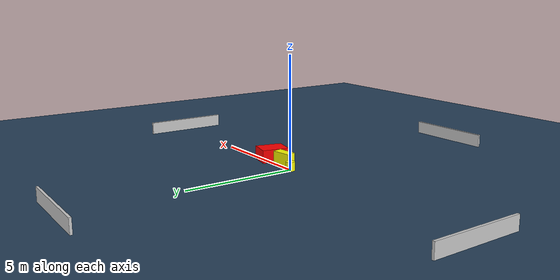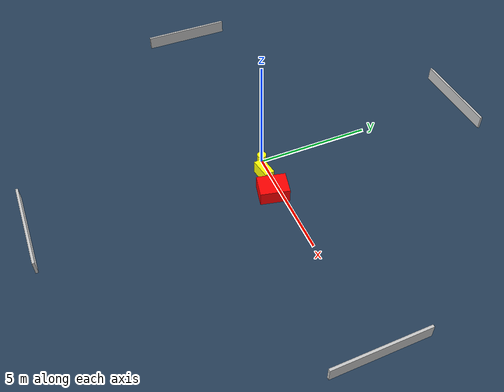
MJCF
<?xml version="1.0" ?>
<mujoco model="generated_environment">
  <option timestep="0.01" integrator="RK4" cone="elliptic"/>
  <default>
    <geom density="1"/>
  </default>
  <asset>
    <texture builtin="gradient" height="3072" name="skybox" rgb1="0.3 0.5 0.7" rgb2="0 0 0" type="skybox" width="512"/>
    <texture builtin="checker" height="300" name="groundplane" rgb1="0.2 0.3 0.4" rgb2="0.1 0.2 0.3" type="2d" width="300"/>
    <material name="groundplane" reflectance="0.2" texrepeat="5 5" texture="groundplane"/>
  </asset>
  <worldbody>
    <light dir="0 0 -1" directional="true" pos="0 0 1.5"/>
    <geom condim="3" friction="0.5 0.005 0.001" material="groundplane" name="floor" pos="0 0 0" size="0 0 0.05" type="plane"/>
    <body name="walls">
      <geom name="wall_1" condim="4" pos="-10.0 0.0 0.3" rgba="0.800000011920929 0.800000011920929 0.800000011920929 1.0" size="0.05 2.0 0.3" type="box"/>
      <geom name="wall_2" condim="4" pos="10.0 0.0 0.3" rgba="0.800000011920929 0.800000011920929 0.800000011920929 1.0" size="0.05 2.0 0.3" type="box"/>
      <geom name="wall_3" condim="4" pos="0.0 -10.0 0.3" rgba="0.800000011920929 0.800000011920929 0.800000011920929 1.0" size="2.0 0.05 0.3" type="box"/>
      <geom name="wall_4" condim="4" pos="0.0 10.0 0.3" rgba="0.800000011920929 0.800000011920929 0.800000011920929 1.0" size="2.0 0.05 0.3" type="box"/>
    </body>
    <body name="robot">
      <joint name="joint_x" type="slide" pos="0 0 0" axis="1 0 0"/>
      <joint name="joint_y" type="slide" pos="0 0 0" axis="0 1 0"/>
      <geom name="robot" type="cylinder" pos="0.0 0.0 0.2" size="0.2 0.2 0.0" mass="5.0" friction="1.0 0.005 0.0001" condim="4" rgba="1.0 1.0 0.0 1.0"/>
    </body>
    <body name="obstacle_1_movable">
      <geom name="obstacle_1_movable" condim="4" pos="0.8748263584529068 -0.2716545639318259 0.3" euler="0 0 188.773842663779" friction="0.0 0.005 0.001" rgba="1.0 1.0 0.0 1.0" size="0.44887034439900464 0.2179767741889293 0.3" type="box" mass="0.1"/>
      <joint type="free"/>
    </body>
    <body name="obstacle_2_static">
      <geom name="obstacle_2_static" condim="4" pos="1.9192851918362024 -0.3302398908740224 0.3" euler="0 0 76.89901184915628" friction="0.0 0.005 0.001" rgba="1.0 0.0 0.0 1.0" size="0.6180157115424278 0.49865855984599045 0.3" type="box"/>
    </body>
  </worldbody>
  <actuator>
    <motor name="actuator_x" joint="joint_x" gear="1" ctrlrange="-1 1"/>
    <motor name="actuator_y" joint="joint_y" gear="1" ctrlrange="-1 1"/>
  </actuator>
</mujoco>
